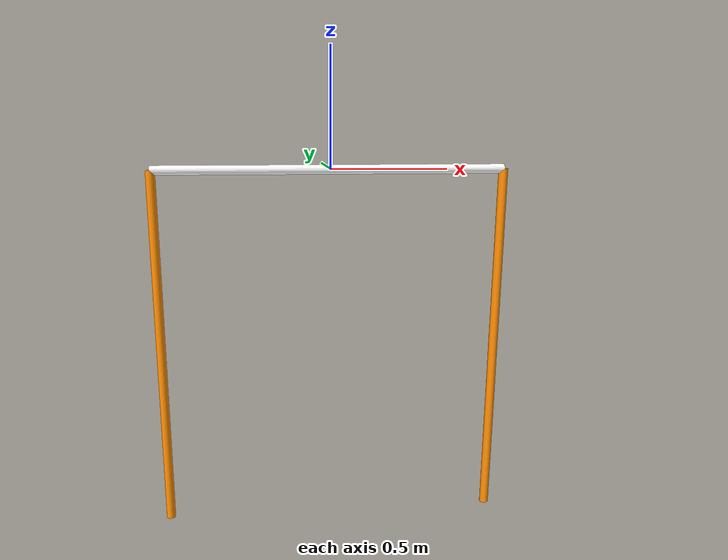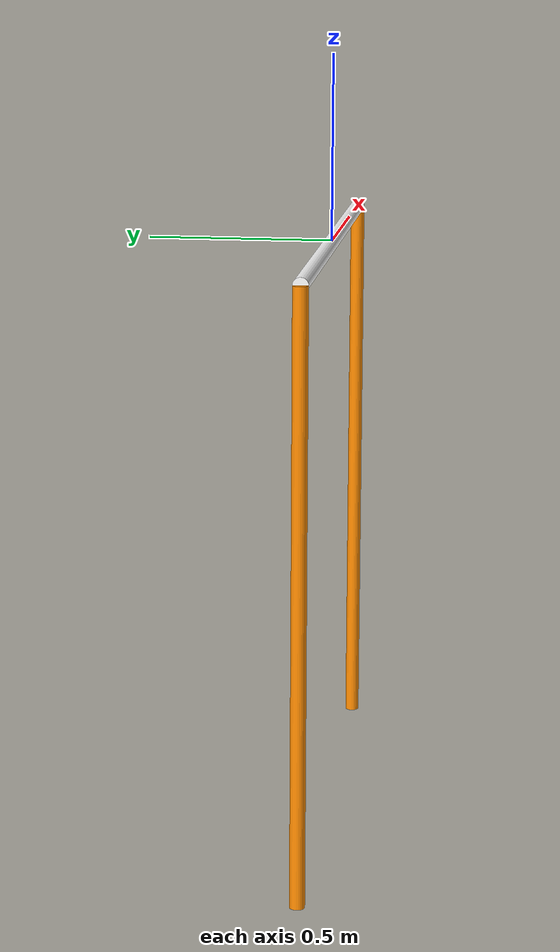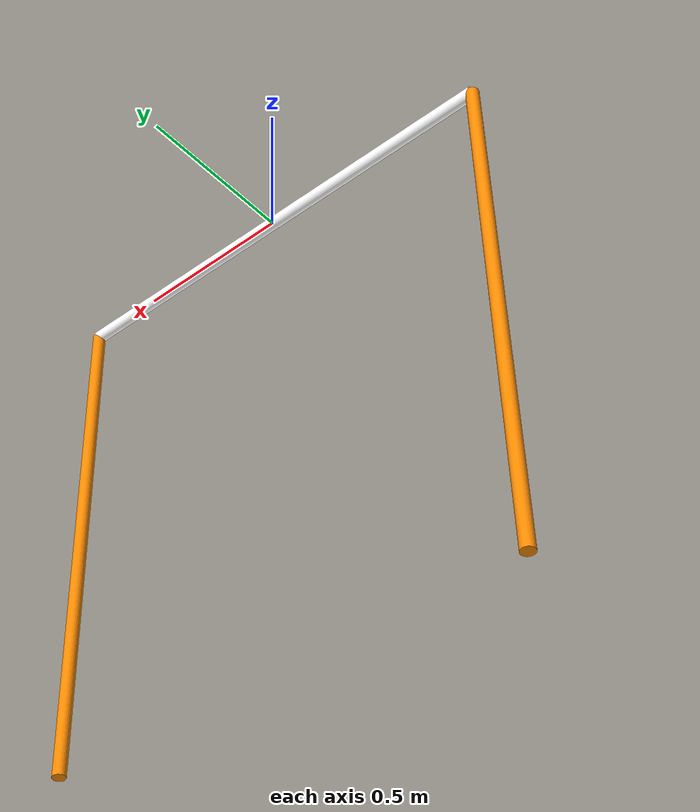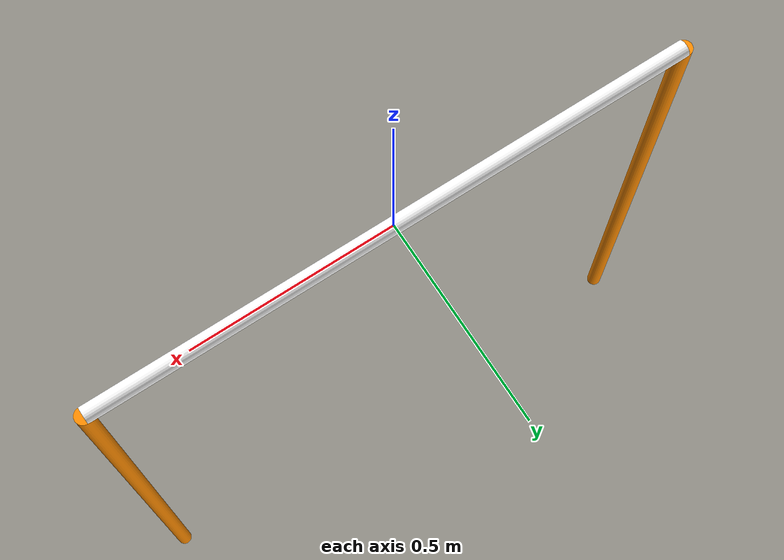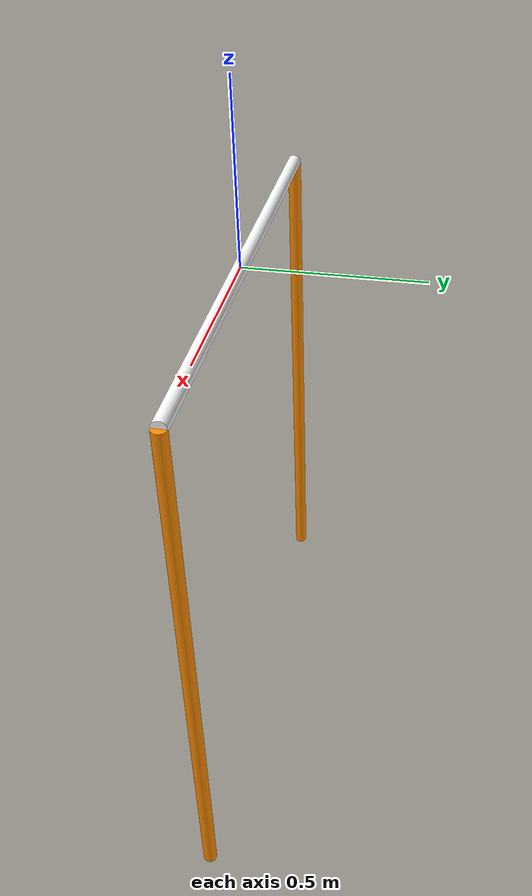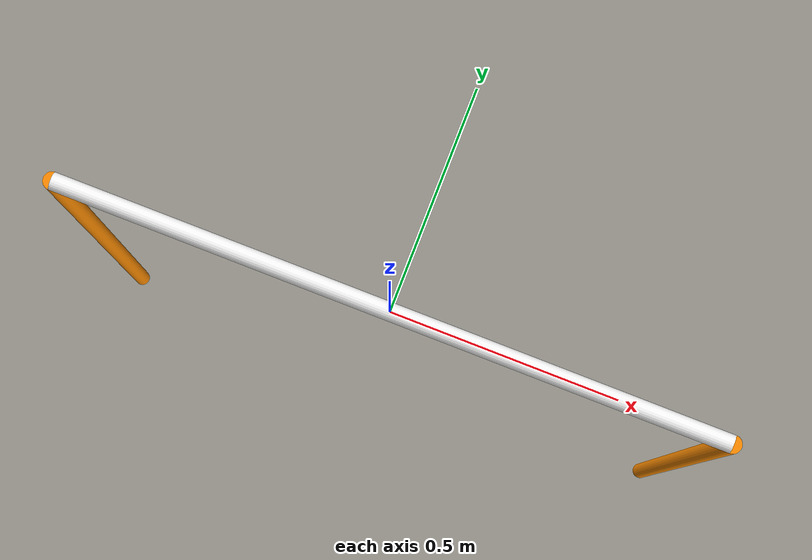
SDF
<?xml version="1.0"?>
<sdf version="1.8">
  <!-- SAUVC 2026 Qualification Gate
       Width: 150cm, Height: 1.6m (bottom of pool to water surface)
       Pole diameter: 4cm, Orange markings on port and starboard
  -->
  <model name="gate_qualification">
    <static>true</static>

    <!-- Top horizontal bar at water surface (z=0) -->
    <link name="top_bar">
      <pose>0 0 0 0 0 0</pose>
      <inertial>
        <mass>1.0</mass>
        <inertia>
          <ixx>0.01</ixx><ixy>0</ixy><ixz>0</ixz>
          <iyy>0.01</iyy><iyz>0</iyz><izz>0.01</izz>
        </inertia>
      </inertial>

      <visual name="top_bar_visual">
        <pose>0 0 0 0 1.5708 0</pose>
        <geometry>
          <cylinder>
            <radius>0.02</radius>
            <length>1.5</length>
          </cylinder>
        </geometry>
        <material>
          <ambient>0.9 0.9 0.9 1</ambient>
          <diffuse>1 1 1 1</diffuse>
          <specular>0.3 0.3 0.3 1</specular>
        </material>
      </visual>

      <collision name="top_bar_collision">
        <pose>0 0 0 0 1.5708 0</pose>
        <geometry>
          <cylinder>
            <radius>0.02</radius>
            <length>1.5</length>
          </cylinder>
        </geometry>
      </collision>
    </link>

    <!-- Left vertical post (port) - Orange -->
    <link name="post_left">
      <pose>-0.75 0 -0.8 0 0 0</pose>
      <inertial>
        <mass>0.5</mass>
        <inertia>
          <ixx>0.01</ixx><ixy>0</ixy><ixz>0</ixz>
          <iyy>0.01</iyy><iyz>0</iyz><izz>0.01</izz>
        </inertia>
      </inertial>

      <visual name="post_left_visual">
        <geometry>
          <cylinder>
            <radius>0.02</radius>
            <length>1.6</length>
          </cylinder>
        </geometry>
        <material>
          <ambient>1 0.5 0 1</ambient>
          <diffuse>1 0.55 0 1</diffuse>
          <specular>0.2 0.2 0.2 1</specular>
        </material>
      </visual>

      <collision name="post_left_collision">
        <geometry>
          <cylinder>
            <radius>0.02</radius>
            <length>1.6</length>
          </cylinder>
        </geometry>
      </collision>
    </link>

    <!-- Right vertical post (starboard) - Orange -->
    <link name="post_right">
      <pose>0.75 0 -0.8 0 0 0</pose>
      <inertial>
        <mass>0.5</mass>
        <inertia>
          <ixx>0.01</ixx><ixy>0</ixy><ixz>0</ixz>
          <iyy>0.01</iyy><iyz>0</iyz><izz>0.01</izz>
        </inertia>
      </inertial>

      <visual name="post_right_visual">
        <geometry>
          <cylinder>
            <radius>0.02</radius>
            <length>1.6</length>
          </cylinder>
        </geometry>
        <material>
          <ambient>1 0.5 0 1</ambient>
          <diffuse>1 0.55 0 1</diffuse>
          <specular>0.2 0.2 0.2 1</specular>
        </material>
      </visual>

      <collision name="post_right_collision">
        <geometry>
          <cylinder>
            <radius>0.02</radius>
            <length>1.6</length>
          </cylinder>
        </geometry>
      </collision>
    </link>

    <!-- Fixed joints -->
    <joint name="top_left_joint" type="fixed">
      <parent>top_bar</parent>
      <child>post_left</child>
    </joint>

    <joint name="top_right_joint" type="fixed">
      <parent>top_bar</parent>
      <child>post_right</child>
    </joint>

  </model>
</sdf>
